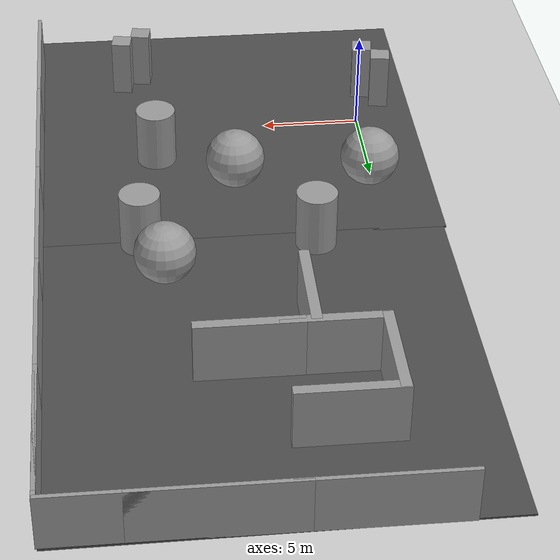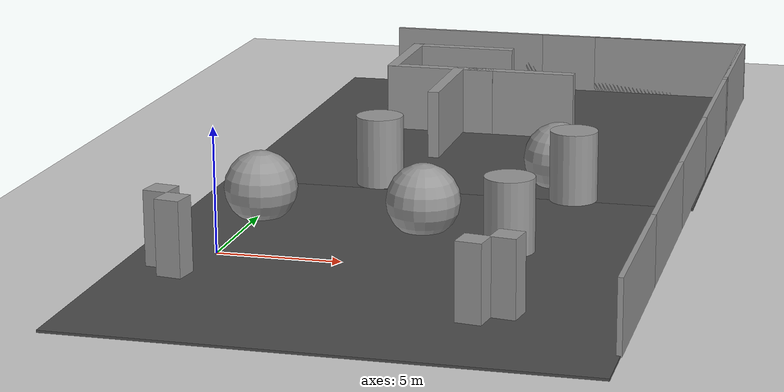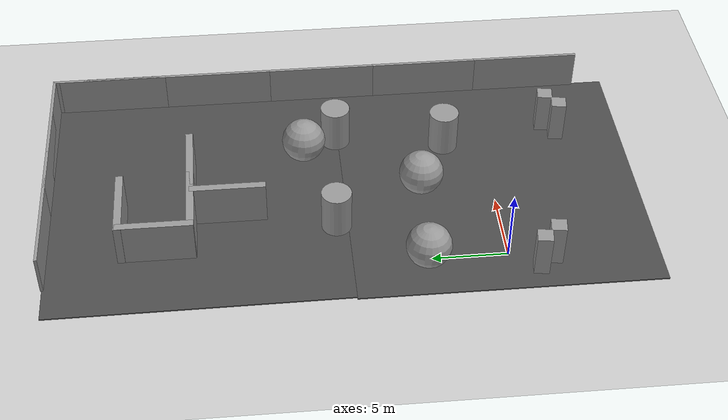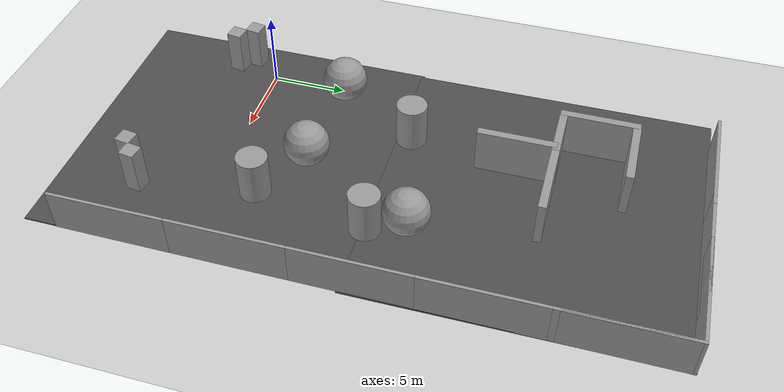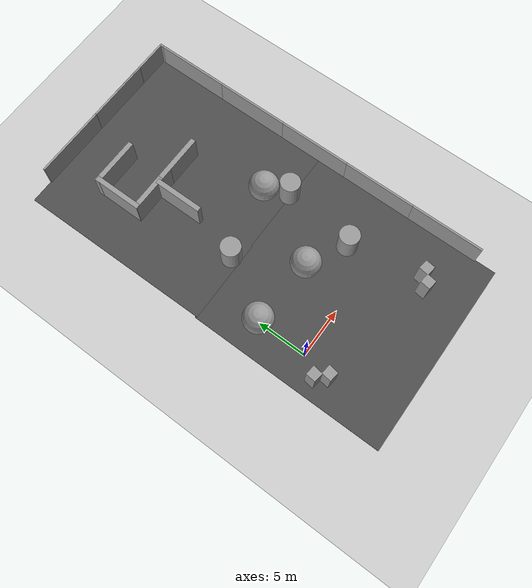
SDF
<sdf version="1.6">
 <world name="default">
  <model name="ground_plane">
   <static>1</static>
   <link name="link">
    <collision name="collision">
     <geometry><plane><normal>0 0 1</normal><size>100 100</size></plane></geometry>
     <surface>
      <contact><collide_bitmask>65535</collide_bitmask></contact>
      <friction><ode><mu>100</mu><mu2>50</mu2></ode></friction>
     </surface>
    </collision>
    <visual name="visual">
     <cast_shadows>0</cast_shadows>
     <geometry><plane><normal>0 0 1</normal><size>100 100</size></plane></geometry>
     <material>
      <script><uri>file://media/materials/scripts/gazebo.material</uri><name>Gazebo/Grey</name></script>
     </material>
    </visual>
   </link>
  </model>
  <model name="asphalt_plane_0_clone_3">
   <static>1</static>
   <link name="link">
    <collision name="collision"><geometry><box><size>20 20 0.1</size></box></geometry></collision>
    <visual name="visual">
     <cast_shadows>0</cast_shadows>
     <geometry><box><size>20 20 0.1</size></box></geometry>
     <material>
      <script>
       <uri>model://asphalt_plane/materials/scripts</uri>
       <uri>model://asphalt_plane/materials/textures</uri>
       <name>vrc/asphalt</name>
      </script>
     </material>
    </visual>
   </link>
   <pose>7.00215 19.9777 0 0 -0 0.006913</pose>
  </model>
  <model name="asphalt_plane_0_clone_0_clone">
   <static>1</static>
   <link name="link">
    <collision name="collision"><geometry><box><size>20 20 0.1</size></box></geometry></collision>
    <visual name="visual">
     <cast_shadows>0</cast_shadows>
     <geometry><box><size>20 20 0.1</size></box></geometry>
     <material>
      <script>
       <uri>model://asphalt_plane/materials/scripts</uri>
       <uri>model://asphalt_plane/materials/textures</uri>
       <name>vrc/asphalt</name>
      </script>
     </material>
    </visual>
   </link>
   <pose>6.94503 0.094695 0 0 -0 0</pose>
  </model>
  <model name="grey_wall_clone_clone_0">
   <static>1</static>
   <link name="link">
    <pose>0 0 1.4 0 -0 0</pose>
    <collision name="collision"><geometry><box><size>7.5 0.2 2.8</size></box></geometry></collision>
    <visual name="visual">
     <cast_shadows>0</cast_shadows>
     <geometry><box><size>7.5 0.2 2.8</size></box></geometry>
     <material>
      <script>
       <uri>model://grey_wall/materials/scripts</uri>
       <uri>model://grey_wall/materials/textures</uri>
       <name>vrc/grey_wall</name>
      </script>
     </material>
    </visual>
    <enable_wind>1</enable_wind>
   </link>
   <pose>3.08937 29.9 0 0 -0 0</pose>
   <enable_wind>1</enable_wind>
  </model>
  <model name="grey_wall_clone_clone_1">
   <static>1</static>
   <link name="link">
    <pose>0 0 1.4 0 -0 0</pose>
    <collision name="collision"><geometry><box><size>7.5 0.2 2.8</size></box></geometry></collision>
    <visual name="visual">
     <cast_shadows>0</cast_shadows>
     <geometry><box><size>7.5 0.2 2.8</size></box></geometry>
     <material>
      <script>
       <uri>model://grey_wall/materials/scripts</uri>
       <uri>model://grey_wall/materials/textures</uri>
       <name>vrc/grey_wall</name>
      </script>
     </material>
    </visual>
    <enable_wind>1</enable_wind>
   </link>
   <pose>13.265 29.9 0 0 -0 0</pose>
   <enable_wind>1</enable_wind>
  </model>
  <model name="grey_wall_clone_clone_2">
   <static>1</static>
   <link name="link">
    <pose>0 0 1.4 0 -0 0</pose>
    <collision name="collision"><geometry><box><size>7.5 0.2 2.8</size></box></geometry></collision>
    <visual name="visual">
     <cast_shadows>0</cast_shadows>
     <geometry><box><size>7.5 0.2 2.8</size></box></geometry>
     <material>
      <script>
       <uri>model://grey_wall/materials/scripts</uri>
       <uri>model://grey_wall/materials/textures</uri>
       <name>vrc/grey_wall</name>
      </script>
     </material>
    </visual>
    <enable_wind>1</enable_wind>
   </link>
   <pose>9.74436 29.9 0 0 -0 0</pose>
   <enable_wind>1</enable_wind>
  </model>
  <model name="grey_wall_clone_clone_3_clone_1">
   <static>1</static>
   <link name="link">
    <pose>0 0 1.4 0 -0 0</pose>
    <collision name="collision"><geometry><box><size>7.5 0.2 2.8</size></box></geometry></collision>
    <visual name="visual">
     <cast_shadows>0</cast_shadows>
     <geometry><box><size>7.5 0.2 2.8</size></box></geometry>
     <material>
      <script>
       <uri>model://grey_wall/materials/scripts</uri>
       <uri>model://grey_wall/materials/textures</uri>
       <name>vrc/grey_wall</name>
      </script>
     </material>
    </visual>
    <enable_wind>1</enable_wind>
   </link>
   <pose>16.9 -3.99436 0 0 -0 1.5707</pose>
   <enable_wind>1</enable_wind>
  </model>
  <model name="grey_wall_clone_clone_3_clone_2">
   <static>1</static>
   <link name="link">
    <pose>0 0 1.4 0 -0 0</pose>
    <collision name="collision"><geometry><box><size>7.5 0.2 2.8</size></box></geometry></collision>
    <visual name="visual">
     <cast_shadows>0</cast_shadows>
     <geometry><box><size>7.5 0.2 2.8</size></box></geometry>
     <material>
      <script>
       <uri>model://grey_wall/materials/scripts</uri>
       <uri>model://grey_wall/materials/textures</uri>
       <name>vrc/grey_wall</name>
      </script>
     </material>
    </visual>
    <enable_wind>1</enable_wind>
   </link>
   <pose>16.9 3.42698 0 0 -0 1.5707</pose>
   <enable_wind>1</enable_wind>
  </model>
  <model name="grey_wall_clone_clone_3_clone_3">
   <static>1</static>
   <link name="link">
    <pose>0 0 1.4 0 -0 0</pose>
    <collision name="collision"><geometry><box><size>7.5 0.2 2.8</size></box></geometry></collision>
    <visual name="visual">
     <cast_shadows>0</cast_shadows>
     <geometry><box><size>7.5 0.2 2.8</size></box></geometry>
     <material>
      <script>
       <uri>model://grey_wall/materials/scripts</uri>
       <uri>model://grey_wall/materials/textures</uri>
       <name>vrc/grey_wall</name>
      </script>
     </material>
    </visual>
    <enable_wind>1</enable_wind>
   </link>
   <pose>16.9 10.8599 0 0 -0 1.5707</pose>
   <enable_wind>1</enable_wind>
  </model>
  <model name="grey_wall_clone_clone_3_clone_4">
   <static>1</static>
   <link name="link">
    <pose>0 0 1.4 0 -0 0</pose>
    <collision name="collision"><geometry><box><size>7.5 0.2 2.8</size></box></geometry></collision>
    <visual name="visual">
     <cast_shadows>0</cast_shadows>
     <geometry><box><size>7.5 0.2 2.8</size></box></geometry>
     <material>
      <script>
       <uri>model://grey_wall/materials/scripts</uri>
       <uri>model://grey_wall/materials/textures</uri>
       <name>vrc/grey_wall</name>
      </script>
     </material>
    </visual>
    <enable_wind>1</enable_wind>
   </link>
   <pose>16.9 18.3261 0 0 -0 1.5707</pose>
   <enable_wind>1</enable_wind>
  </model>
  <model name="grey_wall_clone_clone_3_clone_5">
   <static>1</static>
   <link name="link">
    <pose>0 0 1.4 0 -0 0</pose>
    <collision name="collision"><geometry><box><size>7.5 0.2 2.8</size></box></geometry></collision>
    <visual name="visual">
     <cast_shadows>0</cast_shadows>
     <geometry><box><size>7.5 0.2 2.8</size></box></geometry>
     <material>
      <script>
       <uri>model://grey_wall/materials/scripts</uri>
       <uri>model://grey_wall/materials/textures</uri>
       <name>vrc/grey_wall</name>
      </script>
     </material>
    </visual>
    <enable_wind>1</enable_wind>
   </link>
   <pose>16.9 25.8035 0 0 -0 1.5707</pose>
   <enable_wind>1</enable_wind>
  </model>
  <model name="grey_wall_clone_clone_3_clone_5_clone">
   <static>1</static>
   <link name="link">
    <pose>0 0 1.4 0 -0 0</pose>
    <collision name="collision"><geometry><box><size>7.5 0.2 2.8</size></box></geometry></collision>
    <visual name="visual">
     <cast_shadows>0</cast_shadows>
     <geometry><box><size>7.5 0.2 2.8</size></box></geometry>
     <material>
      <script>
       <uri>model://grey_wall/materials/scripts</uri>
       <uri>model://grey_wall/materials/textures</uri>
       <name>vrc/grey_wall</name>
      </script>
     </material>
    </visual>
    <enable_wind>1</enable_wind>
   </link>
   <pose>16.907 26.2365 0 0 -0 1.5707</pose>
   <enable_wind>1</enable_wind>
  </model>
  <model name="unit_box_x_horiz">
   <link name="link">
    <inertial>
     <mass>1</mass>
     <inertia>
      <ixx>0.166667</ixx>
      <ixy>0</ixy>
      <ixz>0</ixz>
      <iyy>0.166667</iyy>
      <iyz>0</iyz>
      <izz>0.166667</izz>
     </inertia>
    </inertial>
    <visual name="visual">
     <geometry><box><size>5 0.5 3</size></box></geometry>
     <material>
      <script><name>Gazebo/Grey</name><uri>file://media/materials/scripts/gazebo.material</uri></script>
      <shader type="pixel"><normal_map>__default__</normal_map></shader>
      <ambient>0.3 0.3 0.3 1</ambient>
      <diffuse>0.7 0.7 0.7 1</diffuse>
      <specular>0.01 0.01 0.01 1</specular>
      <emissive>0 0 0 1</emissive>
     </material>
    </visual>
    <collision name="collision">
     <geometry><box><size>5 1 3</size></box></geometry>
     <surface>
      <friction>
       <ode><mu>1</mu><mu2>1</mu2><fdir1>0 0 0</fdir1><slip1>0</slip1><slip2>0</slip2></ode>
       <torsional>
        <coefficient>1</coefficient>
        <patch_radius>0</patch_radius>
        <surface_radius>0</surface_radius>
        <use_patch_radius>1</use_patch_radius>
        <ode><slip>0</slip></ode>
       </torsional>
      </friction>
      <bounce><restitution_coefficient>0</restitution_coefficient><threshold>1e+06</threshold></bounce>
      <contact>
       <collide_without_contact>0</collide_without_contact>
       <collide_without_contact_bitmask>1</collide_without_contact_bitmask>
       <collide_bitmask>1</collide_bitmask>
       <ode>
        <soft_cfm>0</soft_cfm>
        <soft_erp>0.2</soft_erp>
        <kp>1e+13</kp>
        <kd>1</kd>
        <max_vel>0.01</max_vel>
        <min_depth>0</min_depth>
       </ode>
       <bullet>
        <split_impulse>1</split_impulse>
        <split_impulse_penetration_threshold>-0.01</split_impulse_penetration_threshold>
        <soft_cfm>0</soft_cfm>
        <soft_erp>0.2</soft_erp>
        <kp>1e+13</kp>
        <kd>1</kd>
       </bullet>
      </contact>
     </surface>
    </collision>
   </link>
   <static>1</static>
   <pose>3.83307 24.9531 1.54702 0 -0 6.7e-05</pose>
  </model>
  <model name="unit_box_x_horiz_clone">
   <link name="link">
    <inertial>
     <mass>1</mass>
     <inertia>
      <ixx>0.166667</ixx>
      <ixy>0</ixy>
      <ixz>0</ixz>
      <iyy>0.166667</iyy>
      <iyz>0</iyz>
      <izz>0.166667</izz>
     </inertia>
    </inertial>
    <visual name="visual">
     <geometry><box><size>5 0.5 3</size></box></geometry>
     <material>
      <script><name>Gazebo/Grey</name><uri>file://media/materials/scripts/gazebo.material</uri></script>
      <shader type="pixel"><normal_map>__default__</normal_map></shader>
      <ambient>0.3 0.3 0.3 1</ambient>
      <diffuse>0.7 0.7 0.7 1</diffuse>
      <specular>0.01 0.01 0.01 1</specular>
      <emissive>0 0 0 1</emissive>
     </material>
    </visual>
    <collision name="collision">
     <geometry><box><size>5 1 3</size></box></geometry>
     <surface>
      <friction>
       <ode><mu>1</mu><mu2>1</mu2><fdir1>0 0 0</fdir1><slip1>0</slip1><slip2>0</slip2></ode>
       <torsional>
        <coefficient>1</coefficient>
        <patch_radius>0</patch_radius>
        <surface_radius>0</surface_radius>
        <use_patch_radius>1</use_patch_radius>
        <ode><slip>0</slip></ode>
       </torsional>
      </friction>
      <bounce><restitution_coefficient>0</restitution_coefficient><threshold>1e+06</threshold></bounce>
      <contact>
       <collide_without_contact>0</collide_without_contact>
       <collide_without_contact_bitmask>1</collide_without_contact_bitmask>
       <collide_bitmask>1</collide_bitmask>
       <ode>
        <soft_cfm>0</soft_cfm>
        <soft_erp>0.2</soft_erp>
        <kp>1e+13</kp>
        <kd>1</kd>
        <max_vel>0.01</max_vel>
        <min_depth>0</min_depth>
       </ode>
       <bullet>
        <split_impulse>1</split_impulse>
        <split_impulse_penetration_threshold>-0.01</split_impulse_penetration_threshold>
        <soft_cfm>0</soft_cfm>
        <soft_erp>0.2</soft_erp>
        <kp>1e+13</kp>
        <kd>1</kd>
       </bullet>
      </contact>
     </surface>
    </collision>
   </link>
   <static>1</static>
   <pose>3.88957 20.3551 1.54702 0 -0 6.7e-05</pose>
  </model>
  <model name="unit_box_x_horiz_clone_0">
   <link name="link">
    <inertial>
     <mass>1</mass>
     <inertia>
      <ixx>0.166667</ixx>
      <ixy>0</ixy>
      <ixz>0</ixz>
      <iyy>0.166667</iyy>
      <iyz>0</iyz>
      <izz>0.166667</izz>
     </inertia>
    </inertial>
    <visual name="visual">
     <geometry><box><size>5 0.5 3</size></box></geometry>
     <material>
      <script><name>Gazebo/Grey</name><uri>file://media/materials/scripts/gazebo.material</uri></script>
      <shader type="pixel"><normal_map>__default__</normal_map></shader>
      <ambient>0.3 0.3 0.3 1</ambient>
      <diffuse>0.7 0.7 0.7 1</diffuse>
      <specular>0.01 0.01 0.01 1</specular>
      <emissive>0 0 0 1</emissive>
     </material>
    </visual>
    <collision name="collision">
     <geometry><box><size>5 1 3</size></box></geometry>
     <surface>
      <friction>
       <ode><mu>1</mu><mu2>1</mu2><fdir1>0 0 0</fdir1><slip1>0</slip1><slip2>0</slip2></ode>
       <torsional>
        <coefficient>1</coefficient>
        <patch_radius>0</patch_radius>
        <surface_radius>0</surface_radius>
        <use_patch_radius>1</use_patch_radius>
        <ode><slip>0</slip></ode>
       </torsional>
      </friction>
      <bounce><restitution_coefficient>0</restitution_coefficient><threshold>1e+06</threshold></bounce>
      <contact>
       <collide_without_contact>0</collide_without_contact>
       <collide_without_contact_bitmask>1</collide_without_contact_bitmask>
       <collide_bitmask>1</collide_bitmask>
       <ode>
        <soft_cfm>0</soft_cfm>
        <soft_erp>0.2</soft_erp>
        <kp>1e+13</kp>
        <kd>1</kd>
        <max_vel>0.01</max_vel>
        <min_depth>0</min_depth>
       </ode>
       <bullet>
        <split_impulse>1</split_impulse>
        <split_impulse_penetration_threshold>-0.01</split_impulse_penetration_threshold>
        <soft_cfm>0</soft_cfm>
        <soft_erp>0.2</soft_erp>
        <kp>1e+13</kp>
        <kd>1</kd>
       </bullet>
      </contact>
     </surface>
    </collision>
   </link>
   <static>1</static>
   <pose>7.68173 20.3603 1.54702 0 -0 6.7e-05</pose>
  </model>
  <model name="unit_box_clone">
   <link name="link">
    <inertial>
     <mass>1</mass>
     <inertia>
      <ixx>0.166667</ixx>
      <ixy>0</ixy>
      <ixz>0</ixz>
      <iyy>0.166667</iyy>
      <iyz>0</iyz>
      <izz>0.166667</izz>
     </inertia>
    </inertial>
    <visual name="visual">
     <geometry><box><size>0.5 5 3</size></box></geometry>
     <material>
      <script><name>Gazebo/Grey</name><uri>file://media/materials/scripts/gazebo.material</uri></script>
      <shader type="pixel"><normal_map>__default__</normal_map></shader>
      <ambient>0.3 0.3 0.3 1</ambient>
      <diffuse>0.7 0.7 0.7 1</diffuse>
      <specular>0.01 0.01 0.01 1</specular>
      <emissive>0 0 0 1</emissive>
     </material>
    </visual>
    <collision name="collision">
     <geometry><box><size>1 5 3</size></box></geometry>
     <surface>
      <friction>
       <ode><mu>1</mu><mu2>1</mu2><fdir1>0 0 0</fdir1><slip1>0</slip1><slip2>0</slip2></ode>
       <torsional>
        <coefficient>1</coefficient>
        <patch_radius>0</patch_radius>
        <surface_radius>0</surface_radius>
        <use_patch_radius>1</use_patch_radius>
        <ode><slip>0</slip></ode>
       </torsional>
      </friction>
      <bounce><restitution_coefficient>0</restitution_coefficient><threshold>1e+06</threshold></bounce>
      <contact>
       <collide_without_contact>0</collide_without_contact>
       <collide_without_contact_bitmask>1</collide_without_contact_bitmask>
       <collide_bitmask>1</collide_bitmask>
       <ode>
        <soft_cfm>0</soft_cfm>
        <soft_erp>0.2</soft_erp>
        <kp>1e+13</kp>
        <kd>1</kd>
        <max_vel>0.01</max_vel>
        <min_depth>0</min_depth>
       </ode>
       <bullet>
        <split_impulse>1</split_impulse>
        <split_impulse_penetration_threshold>-0.01</split_impulse_penetration_threshold>
        <soft_cfm>0</soft_cfm>
        <soft_erp>0.2</soft_erp>
        <kp>1e+13</kp>
        <kd>1</kd>
       </bullet>
      </contact>
     </surface>
    </collision>
   </link>
   <static>1</static>
   <pose>1.60803 22.6446 1.54724 0 -0 6.7e-05</pose>
  </model>
  <model name="unit_sphere_clone">
   <link name="link">
    <inertial>
     <mass>1</mass>
     <inertia><ixx>0.1</ixx><ixy>0</ixy><ixz>0</ixz><iyy>0.1</iyy><iyz>0</iyz><izz>0.1</izz></inertia>
    </inertial>
    <visual name="visual">
     <geometry><sphere><radius>1.5</radius></sphere></geometry>
     <material>
      <script><name>Gazebo/Grey</name><uri>file://media/materials/scripts/gazebo.material</uri></script>
      <shader type="pixel"><normal_map>__default__</normal_map></shader>
      <ambient>0.3 0.3 0.3 1</ambient>
      <diffuse>0.7 0.7 0.7 1</diffuse>
      <specular>0.01 0.01 0.01 1</specular>
      <emissive>0 0 0 1</emissive>
     </material>
    </visual>
    <collision name="collision">
     <geometry><sphere><radius>1.5</radius></sphere></geometry>
     <surface>
      <friction>
       <ode><mu>1</mu><mu2>1</mu2><fdir1>0 0 0</fdir1><slip1>0</slip1><slip2>0</slip2></ode>
       <torsional>
        <coefficient>1</coefficient>
        <patch_radius>0</patch_radius>
        <surface_radius>0</surface_radius>
        <use_patch_radius>1</use_patch_radius>
        <ode><slip>0</slip></ode>
       </torsional>
      </friction>
      <bounce><restitution_coefficient>0</restitution_coefficient><threshold>1e+06</threshold></bounce>
      <contact>
       <collide_without_contact>0</collide_without_contact>
       <collide_without_contact_bitmask>1</collide_without_contact_bitmask>
       <collide_bitmask>1</collide_bitmask>
       <ode>
        <soft_cfm>0</soft_cfm>
        <soft_erp>0.2</soft_erp>
        <kp>1e+13</kp>
        <kd>1</kd>
        <max_vel>0.01</max_vel>
        <min_depth>0</min_depth>
       </ode>
       <bullet>
        <split_impulse>1</split_impulse>
        <split_impulse_penetration_threshold>-0.01</split_impulse_penetration_threshold>
        <soft_cfm>0</soft_cfm>
        <soft_erp>0.2</soft_erp>
        <kp>1e+13</kp>
        <kd>1</kd>
       </bullet>
      </contact>
     </surface>
    </collision>
   </link>
   <static>1</static>
   <pose>10.9751 12.5465 1.20532 0.023046 0.019979 -0.003707</pose>
  </model>
  <model name="unit_cylinder_01_clone_3">
   <link name="link">
    <inertial>
     <mass>1</mass>
     <inertia><ixx>0.145833</ixx><ixy>0</ixy><ixz>0</ixz><iyy>0.145833</iyy><iyz>0</iyz><izz>0.125</izz></inertia>
    </inertial>
    <visual name="visual">
     <geometry><cylinder><radius>1</radius><length>3</length></cylinder></geometry>
     <material>
      <script><name>Gazebo/Grey</name><uri>file://media/materials/scripts/gazebo.material</uri></script>
      <shader type="pixel"><normal_map>__default__</normal_map></shader>
      <ambient>0.3 0.3 0.3 1</ambient>
      <diffuse>0.7 0.7 0.7 1</diffuse>
      <specular>0.01 0.01 0.01 1</specular>
      <emissive>0 0 0 1</emissive>
     </material>
    </visual>
    <collision name="collision">
     <geometry><cylinder><radius>1</radius><length>3</length></cylinder></geometry>
     <surface>
      <friction>
       <ode><mu>1</mu><mu2>1</mu2><fdir1>0 0 0</fdir1><slip1>0</slip1><slip2>0</slip2></ode>
       <torsional>
        <coefficient>1</coefficient>
        <patch_radius>0</patch_radius>
        <surface_radius>0</surface_radius>
        <use_patch_radius>1</use_patch_radius>
        <ode><slip>0</slip></ode>
       </torsional>
      </friction>
      <bounce><restitution_coefficient>0</restitution_coefficient><threshold>1e+06</threshold></bounce>
      <contact>
       <collide_without_contact>0</collide_without_contact>
       <collide_without_contact_bitmask>1</collide_without_contact_bitmask>
       <collide_bitmask>1</collide_bitmask>
       <ode>
        <soft_cfm>0</soft_cfm>
        <soft_erp>0.2</soft_erp>
        <kp>1e+13</kp>
        <kd>1</kd>
        <max_vel>0.01</max_vel>
        <min_depth>0</min_depth>
       </ode>
       <bullet>
        <split_impulse>1</split_impulse>
        <split_impulse_penetration_threshold>-0.01</split_impulse_penetration_threshold>
        <soft_cfm>0</soft_cfm>
        <soft_erp>0.2</soft_erp>
        <kp>1e+13</kp>
        <kd>1</kd>
       </bullet>
      </contact>
     </surface>
    </collision>
   </link>
   <static>1</static>
   <pose>12.036 10.2553 1.52285 1e-06 2e-06 4e-06</pose>
  </model>
  <model name="unit_sphere_clone_clone">
   <link name="link">
    <inertial>
     <mass>1</mass>
     <inertia><ixx>0.1</ixx><ixy>0</ixy><ixz>0</ixz><iyy>0.1</iyy><iyz>0</iyz><izz>0.1</izz></inertia>
    </inertial>
    <visual name="visual">
     <geometry><sphere><radius>1.5</radius></sphere></geometry>
     <material>
      <script><name>Gazebo/Grey</name><uri>file://media/materials/scripts/gazebo.material</uri></script>
      <shader type="pixel"><normal_map>__default__</normal_map></shader>
      <ambient>0.3 0.3 0.3 1</ambient>
      <diffuse>0.7 0.7 0.7 1</diffuse>
      <specular>0.01 0.01 0.01 1</specular>
      <emissive>0 0 0 1</emissive>
     </material>
    </visual>
    <collision name="collision">
     <geometry><sphere><radius>1.5</radius></sphere></geometry>
     <surface>
      <friction>
       <ode><mu>1</mu><mu2>1</mu2><fdir1>0 0 0</fdir1><slip1>0</slip1><slip2>0</slip2></ode>
       <torsional>
        <coefficient>1</coefficient>
        <patch_radius>0</patch_radius>
        <surface_radius>0</surface_radius>
        <use_patch_radius>1</use_patch_radius>
        <ode><slip>0</slip></ode>
       </torsional>
      </friction>
      <bounce><restitution_coefficient>0</restitution_coefficient><threshold>1e+06</threshold></bounce>
      <contact>
       <collide_without_contact>0</collide_without_contact>
       <collide_without_contact_bitmask>1</collide_without_contact_bitmask>
       <collide_bitmask>1</collide_bitmask>
       <ode>
        <soft_cfm>0</soft_cfm>
        <soft_erp>0.2</soft_erp>
        <kp>1e+13</kp>
        <kd>1</kd>
        <max_vel>0.01</max_vel>
        <min_depth>0</min_depth>
       </ode>
       <bullet>
        <split_impulse>1</split_impulse>
        <split_impulse_penetration_threshold>-0.01</split_impulse_penetration_threshold>
        <soft_cfm>0</soft_cfm>
        <soft_erp>0.2</soft_erp>
        <kp>1e+13</kp>
        <kd>1</kd>
       </bullet>
      </contact>
     </surface>
    </collision>
   </link>
   <static>1</static>
   <pose>6.97635 4.81353 1.20532 0.023046 0.019979 -0.003707</pose>
  </model>
  <model name="unit_sphere_clone_clone_0">
   <link name="link">
    <inertial>
     <mass>1</mass>
     <inertia><ixx>0.1</ixx><ixy>0</ixy><ixz>0</ixz><iyy>0.1</iyy><iyz>0</iyz><izz>0.1</izz></inertia>
    </inertial>
    <visual name="visual">
     <geometry><sphere><radius>1.5</radius></sphere></geometry>
     <material>
      <script><name>Gazebo/Grey</name><uri>file://media/materials/scripts/gazebo.material</uri></script>
      <shader type="pixel"><normal_map>__default__</normal_map></shader>
      <ambient>0.3 0.3 0.3 1</ambient>
      <diffuse>0.7 0.7 0.7 1</diffuse>
      <specular>0.01 0.01 0.01 1</specular>
      <emissive>0 0 0 1</emissive>
     </material>
    </visual>
    <collision name="collision">
     <geometry><sphere><radius>1.5</radius></sphere></geometry>
     <surface>
      <friction>
       <ode><mu>1</mu><mu2>1</mu2><fdir1>0 0 0</fdir1><slip1>0</slip1><slip2>0</slip2></ode>
       <torsional>
        <coefficient>1</coefficient>
        <patch_radius>0</patch_radius>
        <surface_radius>0</surface_radius>
        <use_patch_radius>1</use_patch_radius>
        <ode><slip>0</slip></ode>
       </torsional>
      </friction>
      <bounce><restitution_coefficient>0</restitution_coefficient><threshold>1e+06</threshold></bounce>
      <contact>
       <collide_without_contact>0</collide_without_contact>
       <collide_without_contact_bitmask>1</collide_without_contact_bitmask>
       <collide_bitmask>1</collide_bitmask>
       <ode>
        <soft_cfm>0</soft_cfm>
        <soft_erp>0.2</soft_erp>
        <kp>1e+13</kp>
        <kd>1</kd>
        <max_vel>0.01</max_vel>
        <min_depth>0</min_depth>
       </ode>
       <bullet>
        <split_impulse>1</split_impulse>
        <split_impulse_penetration_threshold>-0.01</split_impulse_penetration_threshold>
        <soft_cfm>0</soft_cfm>
        <soft_erp>0.2</soft_erp>
        <kp>1e+13</kp>
        <kd>1</kd>
       </bullet>
      </contact>
     </surface>
    </collision>
   </link>
   <static>1</static>
   <pose>0.08082 5.19989 1.20532 0.023046 0.019979 -0.003707</pose>
  </model>
  <model name="unit_cylinder_01_clone_3_clone">
   <link name="link">
    <inertial>
     <mass>1</mass>
     <inertia><ixx>0.145833</ixx><ixy>0</ixy><ixz>0</ixz><iyy>0.145833</iyy><iyz>0</iyz><izz>0.125</izz></inertia>
    </inertial>
    <visual name="visual">
     <geometry><cylinder><radius>1</radius><length>3</length></cylinder></geometry>
     <material>
      <script><name>Gazebo/Grey</name><uri>file://media/materials/scripts/gazebo.material</uri></script>
      <shader type="pixel"><normal_map>__default__</normal_map></shader>
      <ambient>0.3 0.3 0.3 1</ambient>
      <diffuse>0.7 0.7 0.7 1</diffuse>
      <specular>0.01 0.01 0.01 1</specular>
      <emissive>0 0 0 1</emissive>
     </material>
    </visual>
    <collision name="collision">
     <geometry><cylinder><radius>1</radius><length>3</length></cylinder></geometry>
     <surface>
      <friction>
       <ode><mu>1</mu><mu2>1</mu2><fdir1>0 0 0</fdir1><slip1>0</slip1><slip2>0</slip2></ode>
       <torsional>
        <coefficient>1</coefficient>
        <patch_radius>0</patch_radius>
        <surface_radius>0</surface_radius>
        <use_patch_radius>1</use_patch_radius>
        <ode><slip>0</slip></ode>
       </torsional>
      </friction>
      <bounce><restitution_coefficient>0</restitution_coefficient><threshold>1e+06</threshold></bounce>
      <contact>
       <collide_without_contact>0</collide_without_contact>
       <collide_without_contact_bitmask>1</collide_without_contact_bitmask>
       <collide_bitmask>1</collide_bitmask>
       <ode>
        <soft_cfm>0</soft_cfm>
        <soft_erp>0.2</soft_erp>
        <kp>1e+13</kp>
        <kd>1</kd>
        <max_vel>0.01</max_vel>
        <min_depth>0</min_depth>
       </ode>
       <bullet>
        <split_impulse>1</split_impulse>
        <split_impulse_penetration_threshold>-0.01</split_impulse_penetration_threshold>
        <soft_cfm>0</soft_cfm>
        <soft_erp>0.2</soft_erp>
        <kp>1e+13</kp>
        <kd>1</kd>
       </bullet>
      </contact>
     </surface>
    </collision>
   </link>
   <static>1</static>
   <pose>10.912 2.77155 1.52285 1e-06 2e-06 4e-06</pose>
  </model>
  <model name="unit_cylinder_01_clone_3_clone_0">
   <link name="link">
    <inertial>
     <mass>1</mass>
     <inertia><ixx>0.145833</ixx><ixy>0</ixy><ixz>0</ixz><iyy>0.145833</iyy><iyz>0</iyz><izz>0.125</izz></inertia>
    </inertial>
    <visual name="visual">
     <geometry><cylinder><radius>1</radius><length>3</length></cylinder></geometry>
     <material>
      <script><name>Gazebo/Grey</name><uri>file://media/materials/scripts/gazebo.material</uri></script>
      <shader type="pixel"><normal_map>__default__</normal_map></shader>
      <ambient>0.3 0.3 0.3 1</ambient>
      <diffuse>0.7 0.7 0.7 1</diffuse>
      <specular>0.01 0.01 0.01 1</specular>
      <emissive>0 0 0 1</emissive>
     </material>
    </visual>
    <collision name="collision">
     <geometry><cylinder><radius>1</radius><length>3</length></cylinder></geometry>
     <surface>
      <friction>
       <ode><mu>1</mu><mu2>1</mu2><fdir1>0 0 0</fdir1><slip1>0</slip1><slip2>0</slip2></ode>
       <torsional>
        <coefficient>1</coefficient>
        <patch_radius>0</patch_radius>
        <surface_radius>0</surface_radius>
        <use_patch_radius>1</use_patch_radius>
        <ode><slip>0</slip></ode>
       </torsional>
      </friction>
      <bounce><restitution_coefficient>0</restitution_coefficient><threshold>1e+06</threshold></bounce>
      <contact>
       <collide_without_contact>0</collide_without_contact>
       <collide_without_contact_bitmask>1</collide_without_contact_bitmask>
       <collide_bitmask>1</collide_bitmask>
       <ode>
        <soft_cfm>0</soft_cfm>
        <soft_erp>0.2</soft_erp>
        <kp>1e+13</kp>
        <kd>1</kd>
        <max_vel>0.01</max_vel>
        <min_depth>0</min_depth>
       </ode>
       <bullet>
        <split_impulse>1</split_impulse>
        <split_impulse_penetration_threshold>-0.01</split_impulse_penetration_threshold>
        <soft_cfm>0</soft_cfm>
        <soft_erp>0.2</soft_erp>
        <kp>1e+13</kp>
        <kd>1</kd>
       </bullet>
      </contact>
     </surface>
    </collision>
   </link>
   <static>1</static>
   <pose>3.54246 10.8653 1.52285 1e-06 2e-06 4e-06</pose>
  </model>
  <model name="unit_box_clone_clone">
   <link name="link">
    <inertial>
     <mass>1</mass>
     <inertia>
      <ixx>0.166667</ixx>
      <ixy>0</ixy>
      <ixz>0</ixz>
      <iyy>0.166667</iyy>
      <iyz>0</iyz>
      <izz>0.166667</izz>
     </inertia>
    </inertial>
    <visual name="visual">
     <geometry><box><size>0.5 5 3</size></box></geometry>
     <material>
      <script><name>Gazebo/Grey</name><uri>file://media/materials/scripts/gazebo.material</uri></script>
      <shader type="pixel"><normal_map>__default__</normal_map></shader>
      <ambient>0.3 0.3 0.3 1</ambient>
      <diffuse>0.7 0.7 0.7 1</diffuse>
      <specular>0.01 0.01 0.01 1</specular>
      <emissive>0 0 0 1</emissive>
     </material>
    </visual>
    <collision name="collision">
     <geometry><box><size>1 5 3</size></box></geometry>
     <surface>
      <friction>
       <ode><mu>1</mu><mu2>1</mu2><fdir1>0 0 0</fdir1><slip1>0</slip1><slip2>0</slip2></ode>
       <torsional>
        <coefficient>1</coefficient>
        <patch_radius>0</patch_radius>
        <surface_radius>0</surface_radius>
        <use_patch_radius>1</use_patch_radius>
        <ode><slip>0</slip></ode>
       </torsional>
      </friction>
      <bounce><restitution_coefficient>0</restitution_coefficient><threshold>1e+06</threshold></bounce>
      <contact>
       <collide_without_contact>0</collide_without_contact>
       <collide_without_contact_bitmask>1</collide_without_contact_bitmask>
       <collide_bitmask>1</collide_bitmask>
       <ode>
        <soft_cfm>0</soft_cfm>
        <soft_erp>0.2</soft_erp>
        <kp>1e+13</kp>
        <kd>1</kd>
        <max_vel>0.01</max_vel>
        <min_depth>0</min_depth>
       </ode>
       <bullet>
        <split_impulse>1</split_impulse>
        <split_impulse_penetration_threshold>-0.01</split_impulse_penetration_threshold>
        <soft_cfm>0</soft_cfm>
        <soft_erp>0.2</soft_erp>
        <kp>1e+13</kp>
        <kd>1</kd>
       </bullet>
      </contact>
     </surface>
    </collision>
   </link>
   <static>1</static>
   <pose>4.74145 17.9097 1.54724 0 -0 6.7e-05</pose>
  </model>
  <model name="unit_box_1_clone_0_clone_0">
   <link name="link">
    <inertial>
     <mass>1</mass>
     <inertia>
      <ixx>0.166667</ixx>
      <ixy>0</ixy>
      <ixz>0</ixz>
      <iyy>0.166667</iyy>
      <iyz>0</iyz>
      <izz>0.166667</izz>
     </inertia>
    </inertial>
    <visual name="visual">
     <geometry><box><size>1 1 3</size></box></geometry>
     <material>
      <script><name>Gazebo/Grey</name><uri>file://media/materials/scripts/gazebo.material</uri></script>
      <shader type="pixel"><normal_map>__default__</normal_map></shader>
      <ambient>0.3 0.3 0.3 1</ambient>
      <diffuse>0.7 0.7 0.7 1</diffuse>
      <specular>0.01 0.01 0.01 1</specular>
      <emissive>0 0 0 1</emissive>
     </material>
    </visual>
    <collision name="collision">
     <geometry><box><size>1 1 3</size></box></geometry>
     <surface>
      <friction>
       <ode><mu>1</mu><mu2>1</mu2><fdir1>0 0 0</fdir1><slip1>0</slip1><slip2>0</slip2></ode>
       <torsional>
        <coefficient>1</coefficient>
        <patch_radius>0</patch_radius>
        <surface_radius>0</surface_radius>
        <use_patch_radius>1</use_patch_radius>
        <ode><slip>0</slip></ode>
       </torsional>
      </friction>
      <bounce><restitution_coefficient>0</restitution_coefficient><threshold>1e+06</threshold></bounce>
      <contact>
       <collide_without_contact>0</collide_without_contact>
       <collide_without_contact_bitmask>1</collide_without_contact_bitmask>
       <collide_bitmask>1</collide_bitmask>
       <ode>
        <soft_cfm>0</soft_cfm>
        <soft_erp>0.2</soft_erp>
        <kp>1e+13</kp>
        <kd>1</kd>
        <max_vel>0.01</max_vel>
        <min_depth>0</min_depth>
       </ode>
       <bullet>
        <split_impulse>1</split_impulse>
        <split_impulse_penetration_threshold>-0.01</split_impulse_penetration_threshold>
        <soft_cfm>0</soft_cfm>
        <soft_erp>0.2</soft_erp>
        <kp>1e+13</kp>
        <kd>1</kd>
       </bullet>
      </contact>
     </surface>
    </collision>
   </link>
   <static>1</static>
   <pose>-1.44857 -1.87646 1.52567 0 0 -0.143769</pose>
  </model>
  <model name="unit_box_1_clone_0_clone_1">
   <link name="link">
    <inertial>
     <mass>1</mass>
     <inertia>
      <ixx>0.166667</ixx>
      <ixy>0</ixy>
      <ixz>0</ixz>
      <iyy>0.166667</iyy>
      <iyz>0</iyz>
      <izz>0.166667</izz>
     </inertia>
    </inertial>
    <visual name="visual">
     <geometry><box><size>1 1 3</size></box></geometry>
     <material>
      <script><name>Gazebo/Grey</name><uri>file://media/materials/scripts/gazebo.material</uri></script>
      <shader type="pixel"><normal_map>__default__</normal_map></shader>
      <ambient>0.3 0.3 0.3 1</ambient>
      <diffuse>0.7 0.7 0.7 1</diffuse>
      <specular>0.01 0.01 0.01 1</specular>
      <emissive>0 0 0 1</emissive>
     </material>
    </visual>
    <collision name="collision">
     <geometry><box><size>1 1 3</size></box></geometry>
     <surface>
      <friction>
       <ode><mu>1</mu><mu2>1</mu2><fdir1>0 0 0</fdir1><slip1>0</slip1><slip2>0</slip2></ode>
       <torsional>
        <coefficient>1</coefficient>
        <patch_radius>0</patch_radius>
        <surface_radius>0</surface_radius>
        <use_patch_radius>1</use_patch_radius>
        <ode><slip>0</slip></ode>
       </torsional>
      </friction>
      <bounce><restitution_coefficient>0</restitution_coefficient><threshold>1e+06</threshold></bounce>
      <contact>
       <collide_without_contact>0</collide_without_contact>
       <collide_without_contact_bitmask>1</collide_without_contact_bitmask>
       <collide_bitmask>1</collide_bitmask>
       <ode>
        <soft_cfm>0</soft_cfm>
        <soft_erp>0.2</soft_erp>
        <kp>1e+13</kp>
        <kd>1</kd>
        <max_vel>0.01</max_vel>
        <min_depth>0</min_depth>
       </ode>
       <bullet>
        <split_impulse>1</split_impulse>
        <split_impulse_penetration_threshold>-0.01</split_impulse_penetration_threshold>
        <soft_cfm>0</soft_cfm>
        <soft_erp>0.2</soft_erp>
        <kp>1e+13</kp>
        <kd>1</kd>
       </bullet>
      </contact>
     </surface>
    </collision>
   </link>
   <static>1</static>
   <pose>-0.607468 -2.91918 1.52567 0 0 -0.143769</pose>
  </model>
  <model name="unit_box_1_clone_0_clone_3">
   <link name="link">
    <inertial>
     <mass>1</mass>
     <inertia>
      <ixx>0.166667</ixx>
      <ixy>0</ixy>
      <ixz>0</ixz>
      <iyy>0.166667</iyy>
      <iyz>0</iyz>
      <izz>0.166667</izz>
     </inertia>
    </inertial>
    <visual name="visual">
     <geometry><box><size>1 1 3</size></box></geometry>
     <material>
      <script><name>Gazebo/Grey</name><uri>file://media/materials/scripts/gazebo.material</uri></script>
      <shader type="pixel"><normal_map>__default__</normal_map></shader>
      <ambient>0.3 0.3 0.3 1</ambient>
      <diffuse>0.7 0.7 0.7 1</diffuse>
      <specular>0.01 0.01 0.01 1</specular>
      <emissive>0 0 0 1</emissive>
     </material>
    </visual>
    <collision name="collision">
     <geometry><box><size>1 1 3</size></box></geometry>
     <surface>
      <friction>
       <ode><mu>1</mu><mu2>1</mu2><fdir1>0 0 0</fdir1><slip1>0</slip1><slip2>0</slip2></ode>
       <torsional>
        <coefficient>1</coefficient>
        <patch_radius>0</patch_radius>
        <surface_radius>0</surface_radius>
        <use_patch_radius>1</use_patch_radius>
        <ode><slip>0</slip></ode>
       </torsional>
      </friction>
      <bounce><restitution_coefficient>0</restitution_coefficient><threshold>1e+06</threshold></bounce>
      <contact>
       <collide_without_contact>0</collide_without_contact>
       <collide_without_contact_bitmask>1</collide_without_contact_bitmask>
       <collide_bitmask>1</collide_bitmask>
       <ode>
        <soft_cfm>0</soft_cfm>
        <soft_erp>0.2</soft_erp>
        <kp>1e+13</kp>
        <kd>1</kd>
        <max_vel>0.01</max_vel>
        <min_depth>0</min_depth>
       </ode>
       <bullet>
        <split_impulse>1</split_impulse>
        <split_impulse_penetration_threshold>-0.01</split_impulse_penetration_threshold>
        <soft_cfm>0</soft_cfm>
        <soft_erp>0.2</soft_erp>
        <kp>1e+13</kp>
        <kd>1</kd>
       </bullet>
      </contact>
     </surface>
    </collision>
   </link>
   <static>1</static>
   <pose>11.351 -5.36076 1.52567 0 0 -0.143769</pose>
  </model>
  <model name="unit_box_1_clone_0_clone_4">
   <link name="link">
    <inertial>
     <mass>1</mass>
     <inertia>
      <ixx>0.166667</ixx>
      <ixy>0</ixy>
      <ixz>0</ixz>
      <iyy>0.166667</iyy>
      <iyz>0</iyz>
      <izz>0.166667</izz>
     </inertia>
    </inertial>
    <visual name="visual">
     <geometry><box><size>1 1 3</size></box></geometry>
     <material>
      <script><name>Gazebo/Grey</name><uri>file://media/materials/scripts/gazebo.material</uri></script>
      <shader type="pixel"><normal_map>__default__</normal_map></shader>
      <ambient>0.3 0.3 0.3 1</ambient>
      <diffuse>0.7 0.7 0.7 1</diffuse>
      <specular>0.01 0.01 0.01 1</specular>
      <emissive>0 0 0 1</emissive>
     </material>
    </visual>
    <collision name="collision">
     <geometry><box><size>1 1 3</size></box></geometry>
     <surface>
      <friction>
       <ode><mu>1</mu><mu2>1</mu2><fdir1>0 0 0</fdir1><slip1>0</slip1><slip2>0</slip2></ode>
       <torsional>
        <coefficient>1</coefficient>
        <patch_radius>0</patch_radius>
        <surface_radius>0</surface_radius>
        <use_patch_radius>1</use_patch_radius>
        <ode><slip>0</slip></ode>
       </torsional>
      </friction>
      <bounce><restitution_coefficient>0</restitution_coefficient><threshold>1e+06</threshold></bounce>
      <contact>
       <collide_without_contact>0</collide_without_contact>
       <collide_without_contact_bitmask>1</collide_without_contact_bitmask>
       <collide_bitmask>1</collide_bitmask>
       <ode>
        <soft_cfm>0</soft_cfm>
        <soft_erp>0.2</soft_erp>
        <kp>1e+13</kp>
        <kd>1</kd>
        <max_vel>0.01</max_vel>
        <min_depth>0</min_depth>
       </ode>
       <bullet>
        <split_impulse>1</split_impulse>
        <split_impulse_penetration_threshold>-0.01</split_impulse_penetration_threshold>
        <soft_cfm>0</soft_cfm>
        <soft_erp>0.2</soft_erp>
        <kp>1e+13</kp>
        <kd>1</kd>
       </bullet>
      </contact>
     </surface>
    </collision>
   </link>
   <static>1</static>
   <pose>12.406 -4.5663 1.52567 0 0 -0.143769</pose>
  </model>
 </world>
</sdf>
